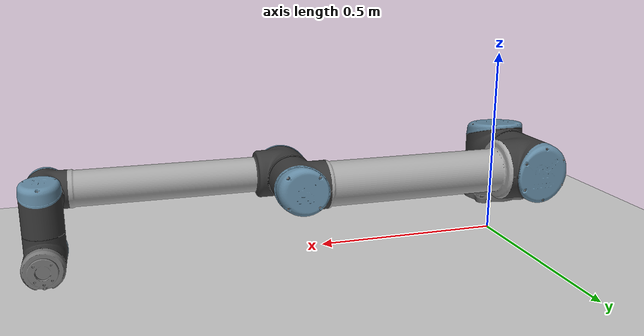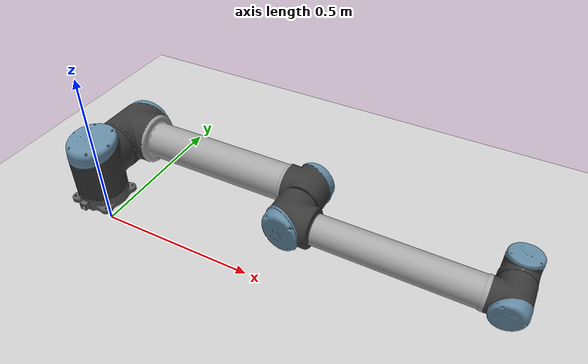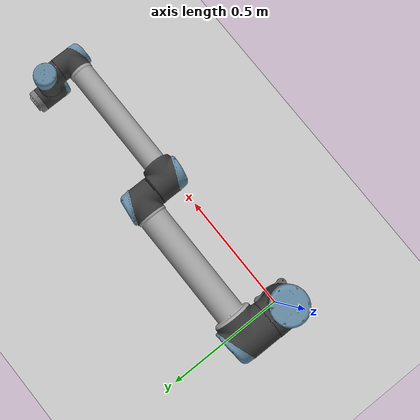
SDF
<sdf version="1.6">
 <world name="default">
  <light name="sun" type="directional">
   <pose>0 0 10 0 -0 0</pose>
   <diffuse>0.8 0.8 0.8 1</diffuse>
   <specular>0.2 0.2 0.2 1</specular>
   <attenuation>
    <range>1000</range>
    <constant>0.9</constant>
    <linear>0.01</linear>
    <quadratic>0.001</quadratic>
   </attenuation>
   <direction>-0.5 0.1 -0.9</direction>
  </light>
  <model name="ground_plane">
   <static>1</static>
   <link name="link">
    <collision name="collision">
     <geometry><plane><normal>0 0 1</normal><size>100 100</size></plane></geometry>
     <surface><friction><ode><mu>100</mu><mu2>50</mu2></ode></friction></surface>
    </collision>
    <visual name="visual">
     <cast_shadows>0</cast_shadows>
     <geometry><plane><normal>0 0 1</normal><size>100 100</size></plane></geometry>
     <material>
      <script><uri>file://media/materials/scripts/gazebo.material</uri><name>Gazebo/Grey</name></script>
     </material>
    </visual>
   </link>
  </model>
  <gravity>0 0 -9.8</gravity>
  <magnetic_field>6e-06 2.3e-05 -4.2e-05</magnetic_field>
  <atmosphere type="adiabatic"/>
  <physics name="default_physics" default="0" type="ode">
   <max_step_size>0.001</max_step_size>
   <real_time_factor>1</real_time_factor>
   <real_time_update_rate>1000</real_time_update_rate>
  </physics>
  <scene><ambient>0.4 0.4 0.4 1</ambient><background>0.7 0.7 0.7 1</background><shadows>1</shadows></scene>
  <spherical_coordinates>
   <surface_model>EARTH_WGS84</surface_model>
   <latitude_deg>0</latitude_deg>
   <longitude_deg>0</longitude_deg>
   <elevation>0</elevation>
   <heading_deg>0</heading_deg>
  </spherical_coordinates>
  <model name="robot">
   <link name="robot::base_link">
    <inertial>
     <mass>4</mass>
     <inertia>
      <ixx>0.00610633</ixx>
      <ixy>0</ixy>
      <ixz>0</ixz>
      <iyy>0.00610633</iyy>
      <iyz>0</iyz>
      <izz>0.01125</izz>
     </inertia>
    </inertial>
    <collision name="base_link_collision">
     <geometry>
      <mesh>
       <scale>1 1 1</scale>
       <uri>/home/yesser/ros_qtc_plugin/src/universal_robot/ur_description/meshes/ur10/collision/base.stl</uri>
      </mesh>
     </geometry>
    </collision>
    <visual name="base_link_visual">
     <geometry>
      <mesh>
       <scale>1 1 1</scale>
       <uri>/home/yesser/ros_qtc_plugin/src/universal_robot/ur_description/meshes/ur10/visual/base.dae</uri>
      </mesh>
     </geometry>
    </visual>
   </link>
   <joint name="world_joint" type="fixed"><child>base_link</child><parent>world</parent></joint>
   <link name="shoulder_link">
    <pose>0 0 0.1273 0 -0 0</pose>
    <inertial>
     <mass>7.778</mass>
     <inertia>
      <ixx>0.0314743</ixx>
      <ixy>0</ixy>
      <ixz>0</ixz>
      <iyy>0.0314743</iyy>
      <iyz>0</iyz>
      <izz>0.0218756</izz>
     </inertia>
    </inertial>
    <collision name="shoulder_link_collision">
     <geometry>
      <mesh>
       <scale>1 1 1</scale>
       <uri>/home/yesser/ros_qtc_plugin/src/universal_robot/ur_description/meshes/ur10/collision/shoulder.stl</uri>
      </mesh>
     </geometry>
    </collision>
    <visual name="shoulder_link_visual">
     <geometry>
      <mesh>
       <scale>1 1 1</scale>
       <uri>/home/yesser/ros_qtc_plugin/src/universal_robot/ur_description/meshes/ur10/visual/shoulder.dae</uri>
      </mesh>
     </geometry>
     <material><script><uri>__default__</uri><name>__default__</name></script></material>
    </visual>
    <self_collide>1</self_collide>
   </link>
   <joint name="shoulder_pan_joint" type="revolute">
    <child>shoulder_link</child>
    <parent>base_link</parent>
    <axis>
     <xyz>0 0 1</xyz>
     <limit><lower>-6.28319</lower><upper>6.28319</upper><effort>330</effort><velocity>2.16</velocity></limit>
     <dynamics>
      <damping>0</damping>
      <friction>0</friction>
      <spring_reference>0</spring_reference>
      <spring_stiffness>0</spring_stiffness>
     </dynamics>
     <use_parent_model_frame>1</use_parent_model_frame>
    </axis>
   </joint>
   <link name="upper_arm_link">
    <pose>0 0.220941 0.1273 3.14159 1.57079 3.14159</pose>
    <inertial>
     <pose>0 0 0.306 0 -0 0</pose>
     <mass>12.93</mass>
     <inertia>
      <ixx>0.421754</ixx>
      <ixy>0</ixy>
      <ixz>0</ixz>
      <iyy>0.421754</iyy>
      <iyz>0</iyz>
      <izz>0.0363656</izz>
     </inertia>
    </inertial>
    <collision name="upper_arm_link_collision">
     <geometry>
      <mesh>
       <scale>1 1 1</scale>
       <uri>/home/yesser/ros_qtc_plugin/src/universal_robot/ur_description/meshes/ur10/collision/upperarm.stl</uri>
      </mesh>
     </geometry>
    </collision>
    <visual name="upper_arm_link_visual">
     <geometry>
      <mesh>
       <scale>1 1 1</scale>
       <uri>/home/yesser/ros_qtc_plugin/src/universal_robot/ur_description/meshes/ur10/visual/upperarm.dae</uri>
      </mesh>
     </geometry>
     <material><script><uri>__default__</uri><name>__default__</name></script></material>
    </visual>
    <self_collide>1</self_collide>
   </link>
   <joint name="shoulder_lift_joint" type="revolute">
    <child>upper_arm_link</child>
    <parent>shoulder_link</parent>
    <axis>
     <xyz>0 1 0</xyz>
     <limit><lower>-6.28319</lower><upper>6.28319</upper><effort>330</effort><velocity>2.16</velocity></limit>
     <dynamics>
      <damping>0</damping>
      <friction>0</friction>
      <spring_reference>0</spring_reference>
      <spring_stiffness>0</spring_stiffness>
     </dynamics>
     <use_parent_model_frame>1</use_parent_model_frame>
    </axis>
   </joint>
   <link name="forearm_link">
    <pose>0.612 0.049041 0.1273 3.14159 1.57079 3.14159</pose>
    <inertial>
     <pose>0 0 0.28615 0 -0 0</pose>
     <mass>3.87</mass>
     <inertia>
      <ixx>0.11107</ixx>
      <ixy>0</ixy>
      <ixz>0</ixz>
      <iyy>0.11107</iyy>
      <iyz>0</iyz>
      <izz>0.0108844</izz>
     </inertia>
    </inertial>
    <collision name="forearm_link_collision">
     <geometry>
      <mesh>
       <scale>1 1 1</scale>
       <uri>/home/yesser/ros_qtc_plugin/src/universal_robot/ur_description/meshes/ur10/collision/forearm.stl</uri>
      </mesh>
     </geometry>
    </collision>
    <visual name="forearm_link_visual">
     <geometry>
      <mesh>
       <scale>1 1 1</scale>
       <uri>/home/yesser/ros_qtc_plugin/src/universal_robot/ur_description/meshes/ur10/visual/forearm.dae</uri>
      </mesh>
     </geometry>
     <material><script><uri>__default__</uri><name>__default__</name></script></material>
    </visual>
    <self_collide>1</self_collide>
   </link>
   <joint name="elbow_joint" type="revolute">
    <child>forearm_link</child>
    <parent>upper_arm_link</parent>
    <axis>
     <xyz>0 1 0</xyz>
     <limit><lower>-3.14159</lower><upper>3.14159</upper><effort>150</effort><velocity>3.15</velocity></limit>
     <dynamics>
      <damping>0</damping>
      <friction>0</friction>
      <spring_reference>0</spring_reference>
      <spring_stiffness>0</spring_stiffness>
     </dynamics>
     <use_parent_model_frame>1</use_parent_model_frame>
    </axis>
   </joint>
   <link name="wrist_1_link">
    <pose>1.1843 0.049041 0.1273 3.14159 -0 3.14159</pose>
    <inertial>
     <mass>1.96</mass>
     <inertia>
      <ixx>0.00510825</ixx>
      <ixy>0</ixy>
      <ixz>0</ixz>
      <iyy>0.00510825</iyy>
      <iyz>0</iyz>
      <izz>0.0055125</izz>
     </inertia>
    </inertial>
    <collision name="wrist_1_link_collision">
     <geometry>
      <mesh>
       <scale>1 1 1</scale>
       <uri>/home/yesser/ros_qtc_plugin/src/universal_robot/ur_description/meshes/ur10/collision/wrist1.stl</uri>
      </mesh>
     </geometry>
    </collision>
    <visual name="wrist_1_link_visual">
     <geometry>
      <mesh>
       <scale>1 1 1</scale>
       <uri>/home/yesser/ros_qtc_plugin/src/universal_robot/ur_description/meshes/ur10/visual/wrist1.dae</uri>
      </mesh>
     </geometry>
     <material><script><uri>__default__</uri><name>__default__</name></script></material>
    </visual>
    <self_collide>1</self_collide>
   </link>
   <joint name="wrist_1_joint" type="revolute">
    <child>wrist_1_link</child>
    <parent>forearm_link</parent>
    <axis>
     <xyz>0 1 0</xyz>
     <limit><lower>-6.28319</lower><upper>6.28319</upper><effort>54</effort><velocity>3.2</velocity></limit>
     <dynamics>
      <damping>0</damping>
      <friction>0</friction>
      <spring_reference>0</spring_reference>
      <spring_stiffness>0</spring_stiffness>
     </dynamics>
     <use_parent_model_frame>1</use_parent_model_frame>
    </axis>
   </joint>
   <link name="wrist_2_link">
    <pose>1.1843 0.163941 0.1273 3.14159 -0 3.14159</pose>
    <inertial>
     <mass>1.96</mass>
     <inertia>
      <ixx>0.00510825</ixx>
      <ixy>0</ixy>
      <ixz>0</ixz>
      <iyy>0.00510825</iyy>
      <iyz>0</iyz>
      <izz>0.0055125</izz>
     </inertia>
    </inertial>
    <collision name="wrist_2_link_collision">
     <geometry>
      <mesh>
       <scale>1 1 1</scale>
       <uri>/home/yesser/ros_qtc_plugin/src/universal_robot/ur_description/meshes/ur10/collision/wrist2.stl</uri>
      </mesh>
     </geometry>
    </collision>
    <visual name="wrist_2_link_visual">
     <geometry>
      <mesh>
       <scale>1 1 1</scale>
       <uri>/home/yesser/ros_qtc_plugin/src/universal_robot/ur_description/meshes/ur10/visual/wrist2.dae</uri>
      </mesh>
     </geometry>
     <material><script><uri>__default__</uri><name>__default__</name></script></material>
    </visual>
    <self_collide>1</self_collide>
   </link>
   <joint name="wrist_2_joint" type="revolute">
    <child>wrist_2_link</child>
    <parent>wrist_1_link</parent>
    <axis>
     <xyz>0 0 -1</xyz>
     <limit><lower>-6.28319</lower><upper>6.28319</upper><effort>54</effort><velocity>3.2</velocity></limit>
     <dynamics>
      <damping>0</damping>
      <friction>0</friction>
      <spring_reference>0</spring_reference>
      <spring_stiffness>0</spring_stiffness>
     </dynamics>
     <use_parent_model_frame>1</use_parent_model_frame>
    </axis>
   </joint>
   <link name="wrist_3_link">
    <pose>1.1843 0.163941 0.0116 3.14159 -0 3.14159</pose>
    <inertial>
     <mass>0.202</mass>
     <inertia>
      <ixx>0.000526462</ixx>
      <ixy>0</ixy>
      <ixz>0</ixz>
      <iyy>0.000526462</iyy>
      <iyz>0</iyz>
      <izz>0.000568125</izz>
     </inertia>
    </inertial>
    <collision name="wrist_3_link_collision">
     <geometry>
      <mesh>
       <scale>1 1 1</scale>
       <uri>/home/yesser/ros_qtc_plugin/src/universal_robot/ur_description/meshes/ur10/collision/wrist3.stl</uri>
      </mesh>
     </geometry>
    </collision>
    <collision name="wrist_3_link_fixed_joint_lump__ee_link_collision_1">
     <pose>-0 0.0822 0 0 -0 1.5708</pose>
     <geometry><box><size>0.01 0.01 0.01</size></box></geometry>
    </collision>
    <visual name="wrist_3_link_visual">
     <geometry>
      <mesh>
       <scale>1 1 1</scale>
       <uri>/home/yesser/ros_qtc_plugin/src/universal_robot/ur_description/meshes/ur10/visual/wrist3.dae</uri>
      </mesh>
     </geometry>
     <material><script><uri>__default__</uri><name>__default__</name></script></material>
    </visual>
    <self_collide>1</self_collide>
   </link>
   <joint name="wrist_3_joint" type="revolute">
    <child>wrist_3_link</child>
    <parent>wrist_2_link</parent>
    <axis>
     <xyz>0 1 0</xyz>
     <limit><lower>-6.28319</lower><upper>6.28319</upper><effort>54</effort><velocity>3.2</velocity></limit>
     <dynamics>
      <damping>0</damping>
      <friction>0</friction>
      <spring_reference>0</spring_reference>
      <spring_stiffness>0</spring_stiffness>
     </dynamics>
     <use_parent_model_frame>1</use_parent_model_frame>
    </axis>
   </joint>
   <static>0</static>
   <plugin name="ros_control" filename="libgazebo_ros_control.so"><robotNamespace>/</robotNamespace></plugin>
   <pose>0 0 0.1 3.1e-05 -6.4e-05 0</pose>
  </model>
 </world>
</sdf>
